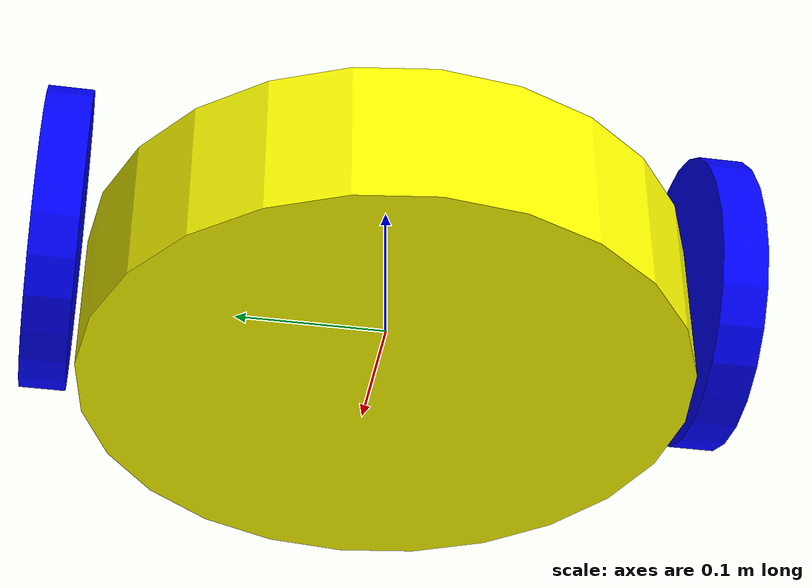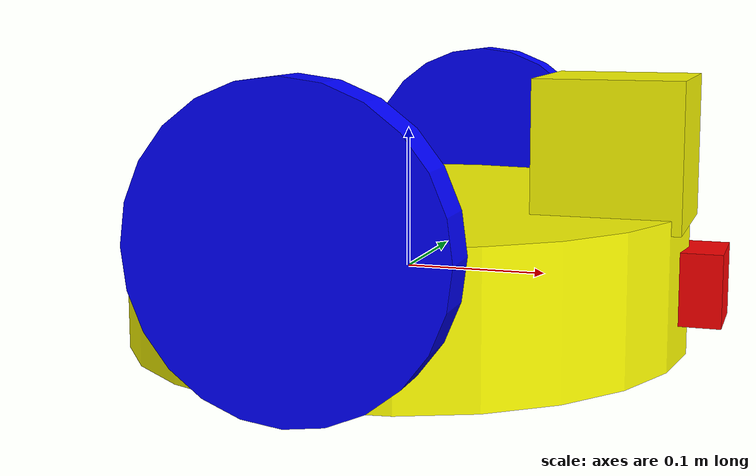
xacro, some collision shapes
<?xml version="1.0"?>

<robot name="my_robot" xmlns:xacro="http://www.ros.org/wiki/xacro">

  <xacro:include filename="$(find my_robot)/urdf/my_robot.gazebo" />

  <!-- Robot Footprint -->
  <link name="robot_footprint" />

  <joint name="robot_footprint_joint" type="fixed">
    <origin xyz="0 0 0" rpy="0 0 0" />
    <parent link="robot_footprint" />
    <child link="chassis" />
  </joint>

  <!-- Chassis -->
  <link name="chassis">
    <pose>0 0 0.10 0 0 0</pose>

    <inertial>
      <mass value="15.0" />
      <origin xyz="0.0 0 0" rpy="0 0 0" />
      <inertia
        ixx="0.1" ixy="0" ixz="0"
        iyy="0.1" iyz="0"
        izz="0.1"
      />
    </inertial>

    <!-- Cylindrical Collision -->
    <collision name="collision">
      <origin xyz="0 0 0" rpy="0 0 0" />
      <geometry>
        <cylinder radius="0.2" length="0.1" />
      </geometry>
    </collision>

    <!-- Cylindrical Visual -->
    <visual name="chassis_visual">
      <origin xyz="0 0 0" rpy="0 0 0" />
      <geometry>
        <cylinder radius="0.2" length="0.1" />
      </geometry>
      <material name="yellow">
        <color rgba="1 1 0 1" />
      </material>
    </visual>

    <!-- Back Caster -->
    <collision name="back_caster_collision">
      <origin xyz="-0.15 0 -0.0" rpy="0 0 0" />
      <geometry>
        <sphere radius="0.05" />
      </geometry>
    </collision>

    <visual name="back_caster_visual">
      <origin xyz="-0.15 0 -0.0" rpy="0 0 0" />
      <geometry>
        <sphere radius="0.05" />
      </geometry>
    </visual>

    <!-- Front Caster -->
    <collision name="front_caster_collision">
      <origin xyz="0.15 0 -0.0" rpy="0 0 0" />
      <geometry>
        <sphere radius="0.05" />
      </geometry>
    </collision>

    <visual name="front_caster_visual">
      <origin xyz="0.15 0 -0.0" rpy="0 0 0" />
      <geometry>
        <sphere radius="0.05" />
      </geometry>
    </visual>

  </link>

  <!-- Left Wheel Link -->
  <link name="left_wheel">

    <inertial>
      <mass value="5.0" />
      <origin xyz="0 0 0" rpy="0 1.5707 1.5707" />
      <inertia
        ixx="0.006" ixy="0" ixz="0"
        iyy="0.006" iyz="0"
        izz="0.025"
      />
    </inertial>

    <collision>
      <origin xyz="0 0 0" rpy="0 1.5707 1.5707" />
      <geometry>
        <cylinder radius="0.10" length="0.03" />
      </geometry>
      <!-- Add surface friction to both wheel collisions -->
      <!-- It will stabilize flickering of the wheels -->
      <surface>
        <friction>
          <ode>
            <mu>1.0</mu>
            <mu2>1.0</mu2>
          </ode>
        </friction>
      </surface>
    </collision>

    <visual>
      <origin xyz="0 0 0" rpy="0 1.5707 1.5707" />
      <geometry>
        <cylinder radius="0.10" length="0.03" />
      </geometry>
      <material name="blue">
        <color rgba="0 0 1 1" />
      </material>
    </visual>

  </link>

  <!-- Right Wheel Link -->
  <link name="right_wheel">

    <inertial>
      <mass value="5.0" />
      <origin xyz="0 0 0" rpy="0 1.5707 1.5707" />
      <inertia
        ixx="0.006" ixy="0" ixz="0"
        iyy="0.006" iyz="0"
        izz="0.025"
      />
    </inertial>

    <collision>
      <origin xyz="0 0 0" rpy="0 1.5707 1.5707" />
      <geometry>
        <cylinder radius="0.10" length="0.03" />
      </geometry>
      <!-- Add surface friction to both wheel collisions -->
      <!-- It will stabilize flickering of the wheels -->
      <surface>
        <friction>
          <ode>
            <mu>1.0</mu>
            <mu2>1.0</mu2>
          </ode>
        </friction>
      </surface>
    </collision>

    <visual>
      <origin xyz="0 0 0" rpy="0 1.5707 1.5707" />
      <geometry>
        <cylinder radius="0.10" length="0.03" />
      </geometry>
      <material name="blue">
        <color rgba="0 0 1 1" />
      </material>
    </visual>

  </link>

  <!-- Left Wheel Joint -->
  <joint name="left_wheel_joint" type="continuous">
    <parent link="chassis" />
    <child link="left_wheel" />
    <origin xyz="0 -0.22 0.05" rpy="0 0 0" />
    <axis xyz="0 1 0" />
    <limit effort="15.0" velocity="10.0" />
    <dynamics damping="0.01" friction="0.0" />
  </joint>

  <!-- Right Wheel Joint -->
  <joint name="right_wheel_joint" type="continuous">
    <parent link="chassis" />
    <child link="right_wheel" />
    <origin xyz="0 0.22 0.05" rpy="0 0 0" />
    <axis xyz="0 1 0" />
    <limit effort="15.0" velocity="10.0" />
    <dynamics damping="0.01" friction="0.0" />
  </joint>

  <!-- Camera Link -->
  <link name="camera">

    <inertial>
      <mass value="0.1" />
      <origin xyz="0 0 0" rpy="0 0 0" />
      <inertia
        ixx="1e-6" ixy="0" ixz="0"
        iyy="1e-6" iyz="0"
        izz="1e-6"
      />
    </inertial>

    <collision>
      <origin xyz="0 0 0" rpy="0 0 0" />
      <geometry>
        <box size="0.05 0.05 0.05" />
      </geometry>
    </collision>

    <visual>
      <origin xyz="0 0 0" rpy="0 0 0" />
      <geometry>
        <box size="0.05 0.05 0.05" />
      </geometry>
      <material name="red">
        <color rgba="1 0 0 1" />
      </material>
    </visual>

  </link>

  <!-- Camera Joint -->
  <joint name="camera_joint" type="fixed">
    <parent link="chassis" />
    <child link="camera" />
    <origin xyz="0.2 0 0" rpy="0 0 0" />
    <axis xyz="0 1 0" />
  </joint>

  <!-- Hokuyo Lidar Link -->
  <link name="hokuyo">

    <inertial>
      <mass value="1e-5" />
      <origin xyz="0 0 0" rpy="0 0 0" />
      <inertia
        ixx="1e-6" ixy="0" ixz="0"
        iyy="1e-6" iyz="0"
        izz="1e-6"
      />
    </inertial>

    <!-- Collision geometry -->
    <collision>
      <origin xyz="0 0 0" rpy="0 0 0" />
      <geometry>
        <box size="0.1 0.1 0.1" />
      </geometry>
    </collision>

    <!-- Visual geometry -->
    <visual>
      <origin xyz="0 0 0" rpy="0 0 0" />
      <geometry>
        <mesh filename="package://my_robot/meshes/hokuyo.dae" />
      </geometry>
      <material name="green">
        <color rgba="1 1 0 1" />
      </material>
    </visual>

  </link>

  <!-- Hokuyo Lidar Joint -->
  <joint name="hokuyo_joint" type="fixed">
    <parent link="chassis" />
    <child link="hokuyo" />
    <origin xyz="0.15 0 0.09" rpy="0 0 0" />
    <axis xyz="0 1 0" />
  </joint>

  <!-- Gazebo material overrides -->
  <gazebo reference="chassis">
    <material>Gazebo/Yellow</material>
  </gazebo>

  <gazebo reference="left_wheel">
    <material>Gazebo/Blue</material>
  </gazebo>

  <gazebo reference="right_wheel">
    <material>Gazebo/Blue</material>
  </gazebo>

  <gazebo reference="camera">
    <material>Gazebo/Red</material>
  </gazebo>

  <gazebo reference="hokuyo">
    <material>Gazebo/Green</material>
  </gazebo>

</robot>
